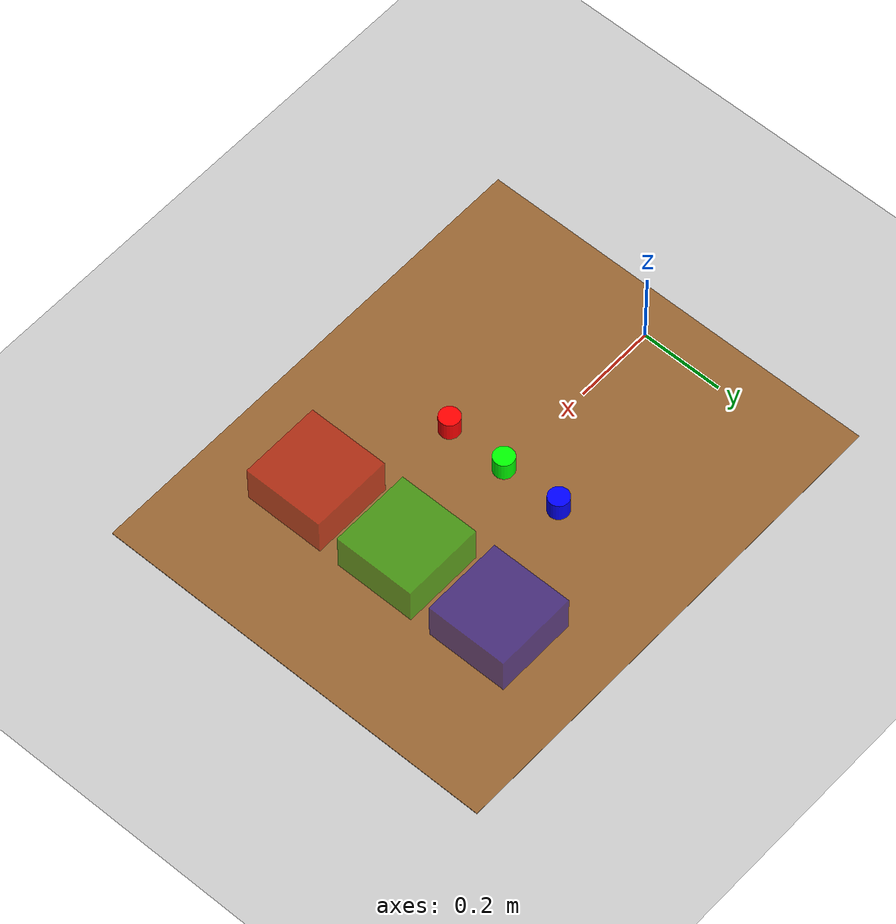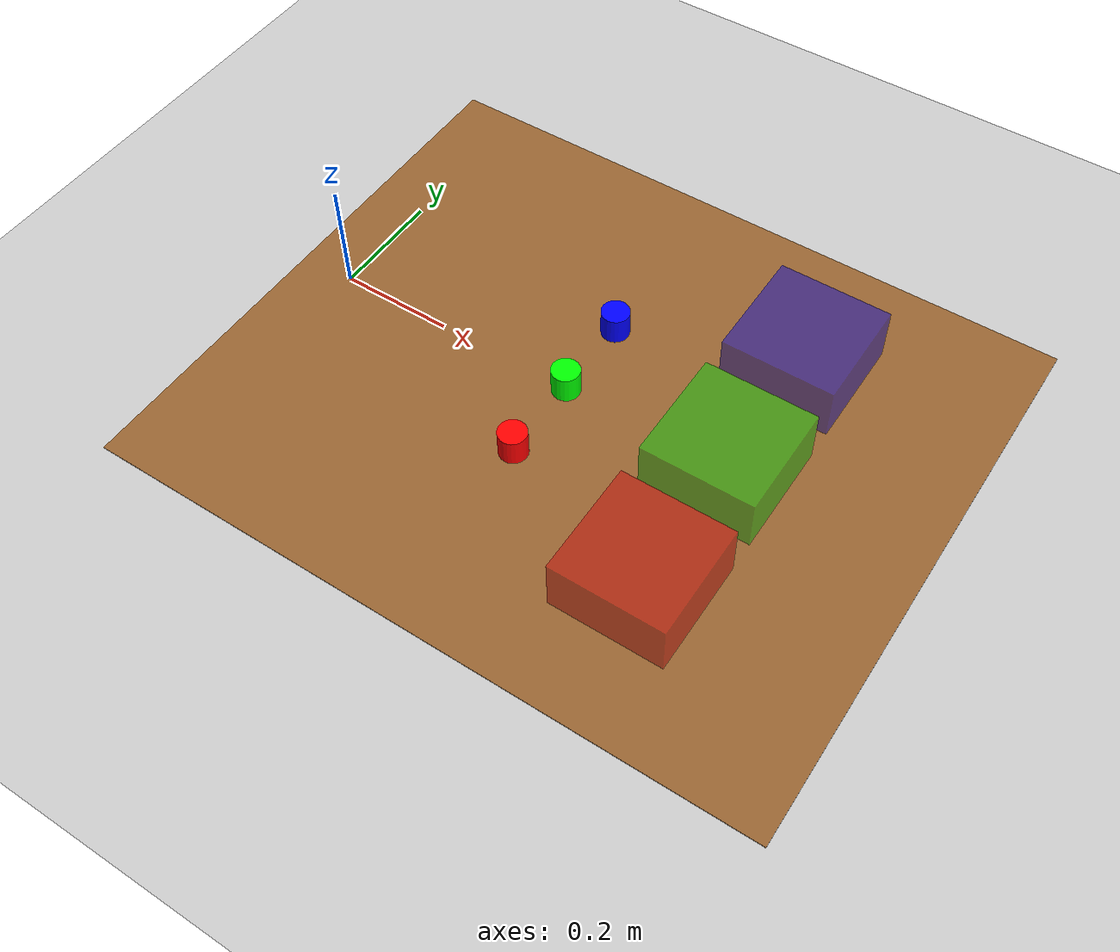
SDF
<?xml version="1.0" ?>
<sdf version="1.6">
  <world name="sorting_world">

    <!-- Physics and Lighting -->
    <gravity>0 0 -9.8</gravity>
    <physics type="ode">
      <max_step_size>0.001</max_step_size>
      <real_time_factor>1</real_time_factor>
    </physics>

    <include>
      <uri>model://sun</uri>
    </include>

    <include>
      <uri>model://ground_plane</uri>
    </include>

    <!-- Table -->
    <model name="table">
      <static>true</static>
      <pose>0.5 0.0 -0.01 0 0 0</pose>  ← buraya taşı
      <link name="table_link">
        <collision name="table_collision">
          <geometry>
            <box><size>1.2 1.0 0.02</size></box>
          </geometry>
        </collision>
        <visual name="table_visual">
          <geometry>
            <box><size>1.2 1.0 0.02</size></box>
          </geometry>
          <material>
            <ambient>0.6 0.4 0.2 1</ambient>
            <diffuse>0.6 0.4 0.2 1</diffuse>
          </material>
        </visual>
      </link>
    </model>

    <!-- ===== OBJECTS ===== -->

    <!-- Red object (cylinder) -->
    <model name="red_object">
      <pose>0.45 -0.15 0.025 0 0 0</pose>
      <link name="link">
        <collision name="collision">
          <geometry>
            <cylinder><radius>0.025</radius><length>0.05</length></cylinder>
          </geometry>
        </collision>
        <visual name="visual">
          <geometry>
            <cylinder><radius>0.025</radius><length>0.05</length></cylinder>
          </geometry>
          <material>
            <ambient>1 0 0 1</ambient>
            <diffuse>1 0 0 1</diffuse>
          </material>
        </visual>
        <inertial>
          <mass>0.1</mass>
          <inertia>
            <ixx>0.0001</ixx><iyy>0.0001</iyy><izz>0.0001</izz>
            <ixy>0</ixy><ixz>0</ixz><iyz>0</iyz>
          </inertia>
        </inertial>
      </link>
    </model>

    <!-- Green object (cylinder) -->
    <model name="green_object">
      <pose>0.45 0.0 0.025 0 0 0</pose>
      <link name="link">
        <collision name="collision">
          <geometry>
            <cylinder><radius>0.025</radius><length>0.05</length></cylinder>
          </geometry>
        </collision>
        <visual name="visual">
          <geometry>
            <cylinder><radius>0.025</radius><length>0.05</length></cylinder>
          </geometry>
          <material>
            <ambient>0 1 0 1</ambient>
            <diffuse>0 1 0 1</diffuse>
          </material>
        </visual>
        <inertial>
          <mass>0.1</mass>
          <inertia>
            <ixx>0.0001</ixx><iyy>0.0001</iyy><izz>0.0001</izz>
            <ixy>0</ixy><ixz>0</ixz><iyz>0</iyz>
          </inertia>
        </inertial>
      </link>
    </model>

    <!-- Blue object (cylinder) -->
    <model name="blue_object">
      <pose>0.45 0.15 0.025 0 0 0</pose>
      <link name="link">
        <collision name="collision">
          <geometry>
            <cylinder><radius>0.025</radius><length>0.05</length></cylinder>
          </geometry>
        </collision>
        <visual name="visual">
          <geometry>
            <cylinder><radius>0.025</radius><length>0.05</length></cylinder>
          </geometry>
          <material>
            <ambient>0 0 1 1</ambient>
            <diffuse>0 0 1 1</diffuse>
          </material>
        </visual>
        <inertial>
          <mass>0.1</mass>
          <inertia>
            <ixx>0.0001</ixx><iyy>0.0001</iyy><izz>0.0001</izz>
            <ixy>0</ixy><ixz>0</ixz><iyz>0</iyz>
          </inertia>
        </inertial>
      </link>
    </model>

    <!-- ===== BINS ===== -->
    <!-- Every box is 4 wall + base, opened box -->
    <!-- We use only solid box for simplicity, it's sufficient for pick&place test -->

    <!-- Red bin -->
    <model name="red_bin">
      <static>true</static>
      <pose>0.75 -0.25 0.05 0 0 0</pose>
      <link name="link">
        <collision name="collision">
          <geometry>
            <box><size>0.2 0.2 0.1</size></box>
          </geometry>
        </collision>
        <visual name="visual">
          <geometry>
            <box><size>0.2 0.2 0.1</size></box>
          </geometry>
          <material>
            <ambient>0.8 0 0 0.5</ambient>
            <diffuse>0.8 0 0 0.5</diffuse>
          </material>
        </visual>
      </link>
    </model>

    <!-- Green bin -->
    <model name="green_bin">
      <static>true</static>
      <pose>0.75 0.0 0.05 0 0 0</pose>
      <link name="link">
        <collision name="collision">
          <geometry>
            <box><size>0.2 0.2 0.1</size></box>
          </geometry>
        </collision>
        <visual name="visual">
          <geometry>
            <box><size>0.2 0.2 0.1</size></box>
          </geometry>
          <material>
            <ambient>0 0.8 0 0.5</ambient>
            <diffuse>0 0.8 0 0.5</diffuse>
          </material>
        </visual>
      </link>
    </model>

    <!-- Blue bin -->
    <model name="blue_bin">
      <static>true</static>
      <pose>0.75 0.25 0.05 0 0 0</pose>
      <link name="link">
        <collision name="collision">
          <geometry>
            <box><size>0.2 0.2 0.1</size></box>
          </geometry>
        </collision>
        <visual name="visual">
          <geometry>
            <box><size>0.2 0.2 0.1</size></box>
          </geometry>
          <material>
            <ambient>0 0 0.8 0.5</ambient>
            <diffuse>0 0 0.8 0.5</diffuse>
          </material>
        </visual>
      </link>
    </model>

  </world>
</sdf>
